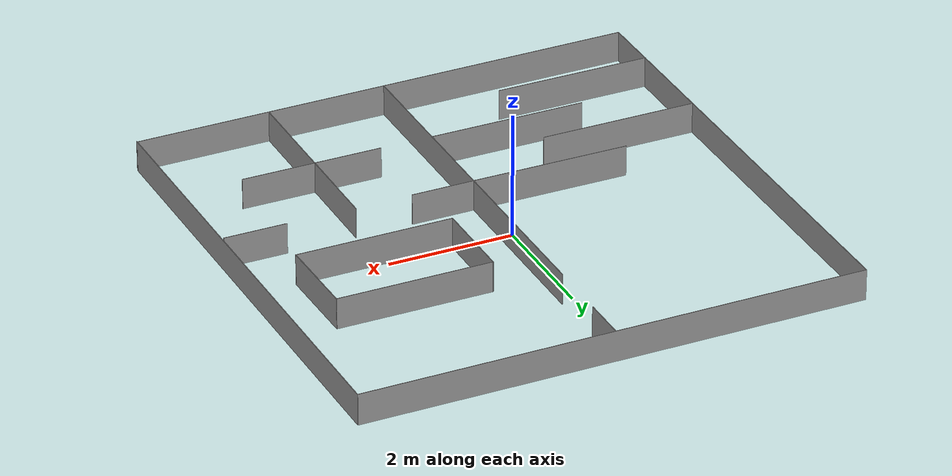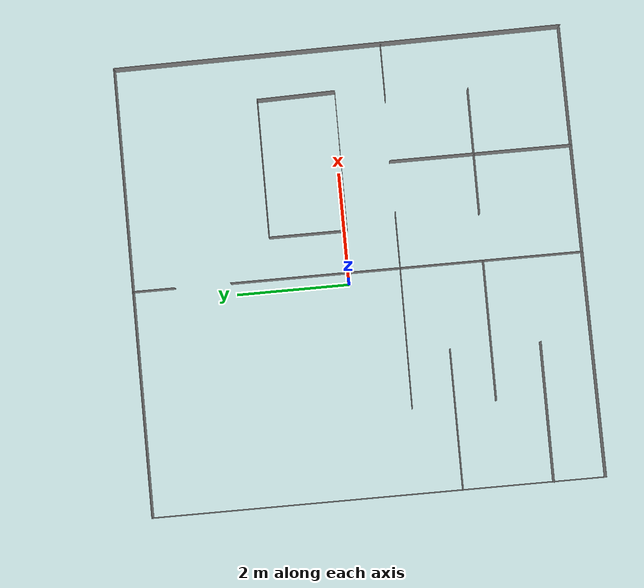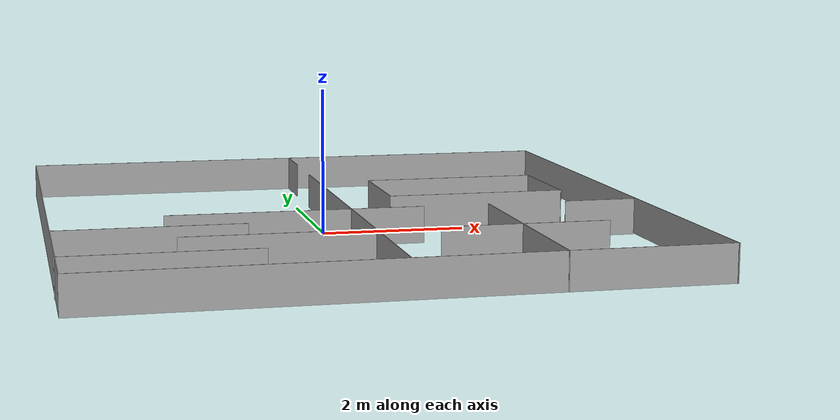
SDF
<?xml version='1.0'?>
<sdf version='1.7'>
  <model name='Untitled'>
    <pose>0.220761 -0.185956 0 0 -0 0</pose>
    <link name='Wall_0'>
      <collision name='Wall_0_Collision'>
        <geometry>
          <box>
            <size>8.01652 0.01 0.5</size>
          </box>
        </geometry>
        <pose>0 0 0.25 0 -0 0</pose>
      </collision>
      <visual name='Wall_0_Visual'>
        <pose>0 0 0.25 0 -0 0</pose>
        <geometry>
          <box>
            <size>8.01652 0.01 0.5</size>
          </box>
        </geometry>
        <material>
          <script>
            <uri>file://media/materials/scripts/gazebo.material</uri>
            <name>Gazebo/Grey</name>
          </script>
          <ambient>1 1 1 1</ambient>
        </material>
        <meta>
          <layer>0</layer>
        </meta>
      </visual>
      <pose>-4.02476 0.008695 0 0 -0 -1.5708</pose>
    </link>
    <link name='Wall_1'>
      <collision name='Wall_1_Collision'>
        <geometry>
          <box>
            <size>8.06987 0.01 0.5</size>
          </box>
        </geometry>
        <pose>0 0 0.25 0 -0 0</pose>
      </collision>
      <visual name='Wall_1_Visual'>
        <pose>0 0 0.25 0 -0 0</pose>
        <geometry>
          <box>
            <size>8.06987 0.01 0.5</size>
          </box>
        </geometry>
        <material>
          <script>
            <uri>file://media/materials/scripts/gazebo.material</uri>
            <name>Gazebo/Grey</name>
          </script>
          <ambient>1 1 1 1</ambient>
        </material>
        <meta>
          <layer>0</layer>
        </meta>
      </visual>
      <pose>0.005022 -3.97717 0 0 -0 0.008631</pose>
    </link>
    <link name='Wall_11'>
      <collision name='Wall_11_Collision'>
        <geometry>
          <box>
            <size>2.5 0.01 0.5</size>
          </box>
        </geometry>
        <pose>0 0 0.25 0 -0 0</pose>
      </collision>
      <visual name='Wall_11_Visual'>
        <pose>0 0 0.25 0 -0 0</pose>
        <geometry>
          <box>
            <size>2.5 0.01 0.5</size>
          </box>
        </geometry>
        <material>
          <script>
            <uri>file://media/materials/scripts/gazebo.material</uri>
            <name>Gazebo/Grey</name>
          </script>
          <ambient>1 1 1 1</ambient>
        </material>
        <meta>
          <layer>0</layer>
        </meta>
      </visual>
      <pose>-2.77417 -1.48378 0 0 -0 0</pose>
    </link>
    <link name='Wall_13'>
      <collision name='Wall_13_Collision'>
        <geometry>
          <box>
            <size>2.50769 0.01 0.5</size>
          </box>
        </geometry>
        <pose>0 0 0.25 0 -0 0</pose>
      </collision>
      <visual name='Wall_13_Visual'>
        <pose>0 0 0.25 0 -0 0</pose>
        <geometry>
          <box>
            <size>2.50769 0.01 0.5</size>
          </box>
        </geometry>
        <material>
          <script>
            <uri>file://media/materials/scripts/gazebo.material</uri>
            <name>Gazebo/Grey</name>
          </script>
          <ambient>1 1 1 1</ambient>
        </material>
        <meta>
          <layer>0</layer>
        </meta>
      </visual>
      <pose>-1.27194 -0.730692 0 0 -0 3.13547</pose>
    </link>
    <link name='Wall_16'>
      <collision name='Wall_16_Collision'>
        <geometry>
          <box>
            <size>0.75 0.01 0.5</size>
          </box>
        </geometry>
        <pose>0 0 0.25 0 -0 0</pose>
      </collision>
      <visual name='Wall_16_Visual'>
        <pose>0 0 0.25 0 -0 0</pose>
        <geometry>
          <box>
            <size>0.75 0.01 0.5</size>
          </box>
        </geometry>
        <material>
          <script>
            <uri>file://media/materials/scripts/gazebo.material</uri>
            <name>Gazebo/Grey</name>
          </script>
          <ambient>1 1 1 1</ambient>
        </material>
        <meta>
          <layer>0</layer>
        </meta>
      </visual>
      <pose>-0.015761 3.64096 0 0 -0 -1.5708</pose>
    </link>
    <link name='Wall_2'>
      <collision name='Wall_2_Collision'>
        <geometry>
          <box>
            <size>7.98204 0.01 0.5</size>
          </box>
        </geometry>
        <pose>0 0 0.25 0 -0 0</pose>
      </collision>
      <visual name='Wall_2_Visual'>
        <pose>0 0 0.25 0 -0 0</pose>
        <geometry>
          <box>
            <size>7.98204 0.01 0.5</size>
          </box>
        </geometry>
        <material>
          <script>
            <uri>file://media/materials/scripts/gazebo.material</uri>
            <name>Gazebo/Grey</name>
          </script>
          <ambient>1 1 1 1</ambient>
        </material>
        <meta>
          <layer>0</layer>
        </meta>
      </visual>
      <pose>4.00002 0.026086 0 0 -0 1.57952</pose>
    </link>
    <link name='Wall_20'>
      <collision name='Wall_20_Collision'>
        <geometry>
          <box>
            <size>2.46966 0.01 0.5</size>
          </box>
        </geometry>
        <pose>0 0 0.25 0 -0 0</pose>
      </collision>
      <visual name='Wall_20_Visual'>
        <pose>0 0 0.25 0 -0 0</pose>
        <geometry>
          <box>
            <size>2.46966 0.01 0.5</size>
          </box>
        </geometry>
        <material>
          <script>
            <uri>file://media/materials/scripts/gazebo.material</uri>
            <name>Gazebo/Grey</name>
          </script>
          <ambient>1 1 1 1</ambient>
        </material>
        <meta>
          <layer>0</layer>
        </meta>
      </visual>
      <pose>1.95807 1.52543 0 0 -0 -0.002056</pose>
    </link>
    <link name='Wall_22'>
      <collision name='Wall_22_Collision'>
        <geometry>
          <box>
            <size>1.4 0.01 0.5</size>
          </box>
        </geometry>
        <pose>0 0 0.25 0 -0 0</pose>
      </collision>
      <visual name='Wall_22_Visual'>
        <pose>0 0 0.25 0 -0 0</pose>
        <geometry>
          <box>
            <size>1.4 0.01 0.5</size>
          </box>
        </geometry>
        <material>
          <script>
            <uri>file://media/materials/scripts/gazebo.material</uri>
            <name>Gazebo/Grey</name>
          </script>
          <ambient>1 1 1 1</ambient>
        </material>
        <meta>
          <layer>0</layer>
        </meta>
      </visual>
      <pose>0.728239 0.832956 0 0 -0 -1.5708</pose>
    </link>
    <link name='Wall_24'>
      <collision name='Wall_24_Collision'>
        <geometry>
          <box>
            <size>1.39528 0.01 0.5</size>
          </box>
        </geometry>
        <pose>0 0 0.25 0 -0 0</pose>
      </collision>
      <visual name='Wall_24_Visual'>
        <pose>0 0 0.25 0 -0 0</pose>
        <geometry>
          <box>
            <size>1.39528 0.01 0.5</size>
          </box>
        </geometry>
        <material>
          <script>
            <uri>file://media/materials/scripts/gazebo.material</uri>
            <name>Gazebo/Grey</name>
          </script>
          <ambient>1 1 1 1</ambient>
        </material>
        <meta>
          <layer>0</layer>
        </meta>
      </visual>
      <pose>3.20307 0.830428 0 0 -0 -1.54889</pose>
    </link>
    <link name='Wall_26'>
      <collision name='Wall_26_Collision'>
        <geometry>
          <box>
            <size>1 0.01 0.5</size>
          </box>
        </geometry>
        <pose>0 0 0.25 0 -0 0</pose>
      </collision>
      <visual name='Wall_26_Visual'>
        <pose>0 0 0.25 0 -0 0</pose>
        <geometry>
          <box>
            <size>1 0.01 0.5</size>
          </box>
        </geometry>
        <material>
          <script>
            <uri>file://media/materials/scripts/gazebo.material</uri>
            <name>Gazebo/Grey</name>
          </script>
          <ambient>1 1 1 1</ambient>
        </material>
        <meta>
          <layer>0</layer>
        </meta>
      </visual>
      <pose>0.479534 -0.738339 0 0 -0 0</pose>
    </link>
    <link name='Wall_28'>
      <collision name='Wall_28_Collision'>
        <geometry>
          <box>
            <size>1 0.01 0.5</size>
          </box>
        </geometry>
        <pose>0 0 0.25 0 -0 0</pose>
      </collision>
      <visual name='Wall_28_Visual'>
        <pose>0 0 0.25 0 -0 0</pose>
        <geometry>
          <box>
            <size>1 0.01 0.5</size>
          </box>
        </geometry>
        <material>
          <script>
            <uri>file://media/materials/scripts/gazebo.material</uri>
            <name>Gazebo/Grey</name>
          </script>
          <ambient>1 1 1 1</ambient>
        </material>
        <meta>
          <layer>0</layer>
        </meta>
      </visual>
      <pose>3.47394 -0.748339 0 0 -0 0</pose>
    </link>
    <link name='Wall_3'>
      <collision name='Wall_3_Collision'>
        <geometry>
          <box>
            <size>8 0.01 0.5</size>
          </box>
        </geometry>
        <pose>0 0 0.25 0 -0 0</pose>
      </collision>
      <visual name='Wall_3_Visual'>
        <pose>0 0 0.25 0 -0 0</pose>
        <geometry>
          <box>
            <size>8 0.01 0.5</size>
          </box>
        </geometry>
        <material>
          <script>
            <uri>file://media/materials/scripts/gazebo.material</uri>
            <name>Gazebo/Grey</name>
          </script>
          <ambient>1 1 1 1</ambient>
        </material>
        <meta>
          <layer>0</layer>
        </meta>
      </visual>
      <pose>-0.029761 4.01196 0 0 -0 3.14159</pose>
    </link>
    <link name='Wall_30'>
      <collision name='Wall_30_Collision'>
        <geometry>
          <box>
            <size>3.25 0.01 0.5</size>
          </box>
        </geometry>
        <pose>0 0 0.25 0 -0 0</pose>
      </collision>
      <visual name='Wall_30_Visual'>
        <pose>0 0 0.25 0 -0 0</pose>
        <geometry>
          <box>
            <size>3.25 0.01 0.5</size>
          </box>
        </geometry>
        <material>
          <script>
            <uri>file://media/materials/scripts/gazebo.material</uri>
            <name>Gazebo/Grey</name>
          </script>
          <ambient>1 1 1 1</ambient>
        </material>
        <meta>
          <layer>0</layer>
        </meta>
      </visual>
      <pose>1.88924 -2.34604 0 0 -0 -1.5708</pose>
    </link>
    <link name='Wall_32'>
      <collision name='Wall_32_Collision'>
        <geometry>
          <box>
            <size>2.25 0.01 0.5</size>
          </box>
        </geometry>
        <pose>0 0 0.25 0 -0 0</pose>
      </collision>
      <visual name='Wall_32_Visual'>
        <pose>0 0 0.25 0 -0 0</pose>
        <geometry>
          <box>
            <size>2.25 0.01 0.5</size>
          </box>
        </geometry>
        <material>
          <script>
            <uri>file://media/materials/scripts/gazebo.material</uri>
            <name>Gazebo/Grey</name>
          </script>
          <ambient>1 1 1 1</ambient>
        </material>
        <meta>
          <layer>0</layer>
        </meta>
      </visual>
      <pose>1.93524 -2.22504 0 0 -0 0</pose>
    </link>
    <link name='Wall_34'>
      <collision name='Wall_34_Collision'>
        <geometry>
          <box>
            <size>2.5 0.01 0.5</size>
          </box>
        </geometry>
        <pose>0 0 0.25 0 -0 0</pose>
      </collision>
      <visual name='Wall_34_Visual'>
        <pose>0 0 0.25 0 -0 0</pose>
        <geometry>
          <box>
            <size>2.5 0.01 0.5</size>
          </box>
        </geometry>
        <material>
          <script>
            <uri>file://media/materials/scripts/gazebo.material</uri>
            <name>Gazebo/Grey</name>
          </script>
          <ambient>1 1 1 1</ambient>
        </material>
        <meta>
          <layer>0</layer>
        </meta>
      </visual>
      <pose>1.97324 0.137956 0 0 -0 0</pose>
    </link>
    <link name='Wall_5'>
      <collision name='Wall_5_Collision'>
        <geometry>
          <box>
            <size>2.5 0.01 0.5</size>
          </box>
        </geometry>
        <pose>0 0 0.25 0 -0 0</pose>
      </collision>
      <visual name='Wall_5_Visual'>
        <pose>0 0 0.25 0 -0 0</pose>
        <geometry>
          <box>
            <size>2.5 0.01 0.5</size>
          </box>
        </geometry>
        <material>
          <script>
            <uri>file://media/materials/scripts/gazebo.material</uri>
            <name>Gazebo/Grey</name>
          </script>
          <ambient>1 1 1 1</ambient>
        </material>
        <meta>
          <layer>0</layer>
        </meta>
      </visual>
      <pose>-2.78985 -3.09083 0 0 -0 0</pose>
    </link>
    <link name='Wall_7'>
      <collision name='Wall_7_Collision'>
        <geometry>
          <box>
            <size>2.5 0.01 0.5</size>
          </box>
        </geometry>
        <pose>0 0 0.25 0 -0 0</pose>
      </collision>
      <visual name='Wall_7_Visual'>
        <pose>0 0 0.25 0 -0 0</pose>
        <geometry>
          <box>
            <size>2.5 0.01 0.5</size>
          </box>
        </geometry>
        <material>
          <script>
            <uri>file://media/materials/scripts/gazebo.material</uri>
            <name>Gazebo/Grey</name>
          </script>
          <ambient>1 1 1 1</ambient>
        </material>
        <meta>
          <layer>0</layer>
        </meta>
      </visual>
      <pose>-1.2656 -2.21404 0 0 -0 0</pose>
    </link>
    <link name='Wall_9'>
      <collision name='Wall_9_Collision'>
        <geometry>
          <box>
            <size>6.25 0.01 0.5</size>
          </box>
        </geometry>
        <pose>0 0 0.25 0 -0 0</pose>
      </collision>
      <visual name='Wall_9_Visual'>
        <pose>0 0 0.25 0 -0 0</pose>
        <geometry>
          <box>
            <size>6.25 0.01 0.5</size>
          </box>
        </geometry>
        <material>
          <script>
            <uri>file://media/materials/scripts/gazebo.material</uri>
            <name>Gazebo/Grey</name>
          </script>
          <ambient>1 1 1 1</ambient>
        </material>
        <meta>
          <layer>0</layer>
        </meta>
      </visual>
      <pose>-0.019761 -0.848044 0 0 -0 1.5708</pose>
    </link>
    <static>1</static>
  </model>
</sdf>
